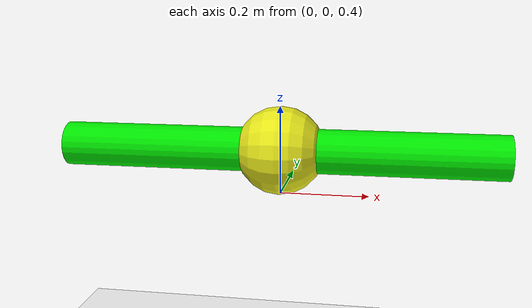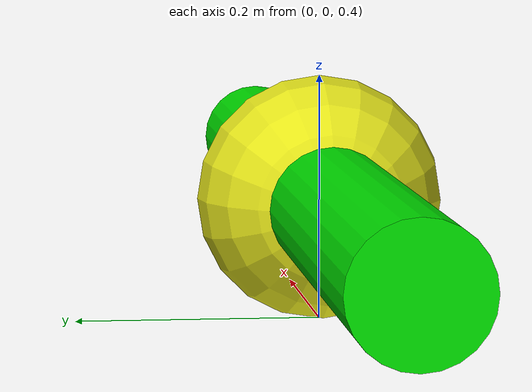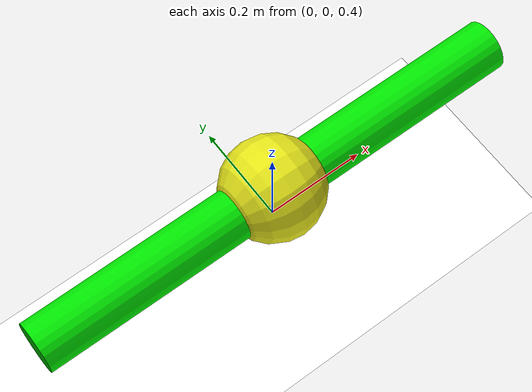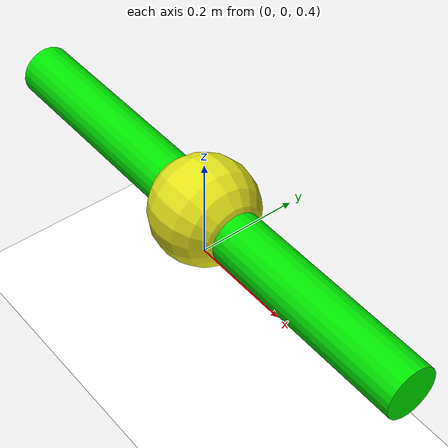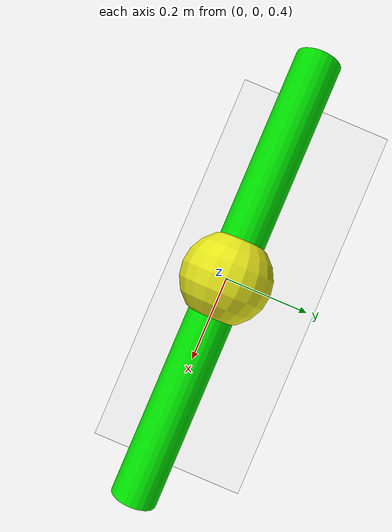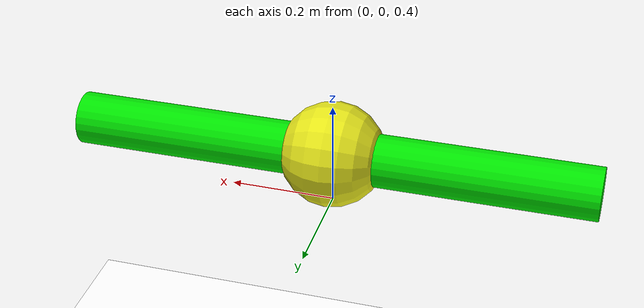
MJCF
<mujoco>
  <compiler inertiafromgeom="true"/>
  <option gravity = "0 0 -9.81" integrator="implicitfast" timestep="0.001">
    <flag contact="enable" />
  </option >
  <default>
    <joint limited="false"/>
  </default>
  <worldbody>
    <light diffuse=".5 .5 .5" pos="0 0 0.5" dir="0 0 -1"/>
    <geom type="plane" size="5 5 0.1" rgba="1 1 1 1"/>
    <body pos="0 0 .5" euler="0 -90 0">
      <joint name="pin" type="hinge" axis = "0 -1 0" pos="0 0 -0.5" armature="0" damping="1"/>
      <geom type="cylinder" size="0.05 0.5" rgba="0 .9 0 1" mass = "1"/>
      <site name="endeff" type="sphere" size=".1" rgba=".9 .9 .1 1"/>
    </body>
  </worldbody>
  <actuator>
  </actuator>
  <actuator>
    <motor name="torque" gear="1" joint="pin" />
  </actuator>
  <sensor>
    <force name="force" site ='endeff'/>
    <torque name="torque" site='endeff' />
  </sensor>
</mujoco>
